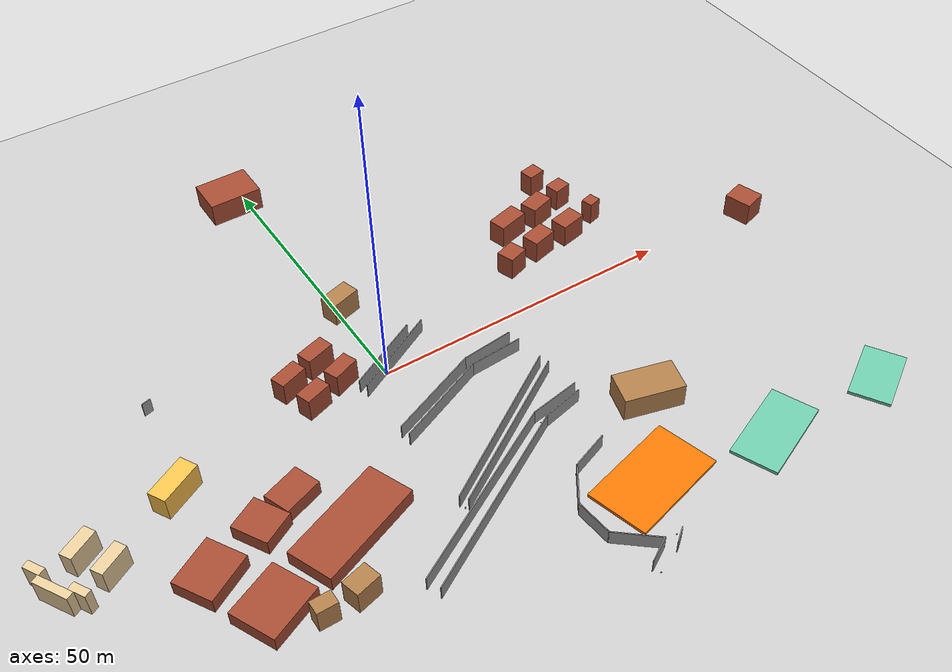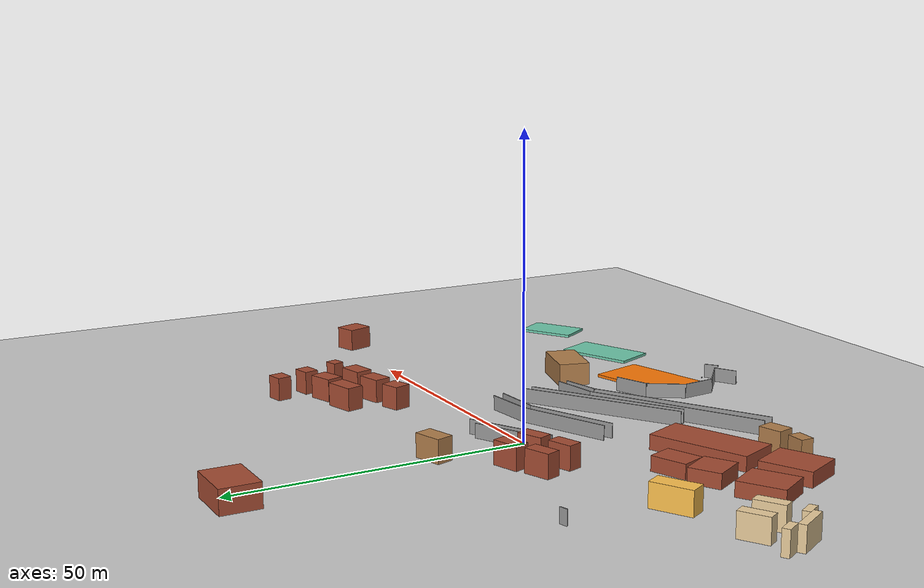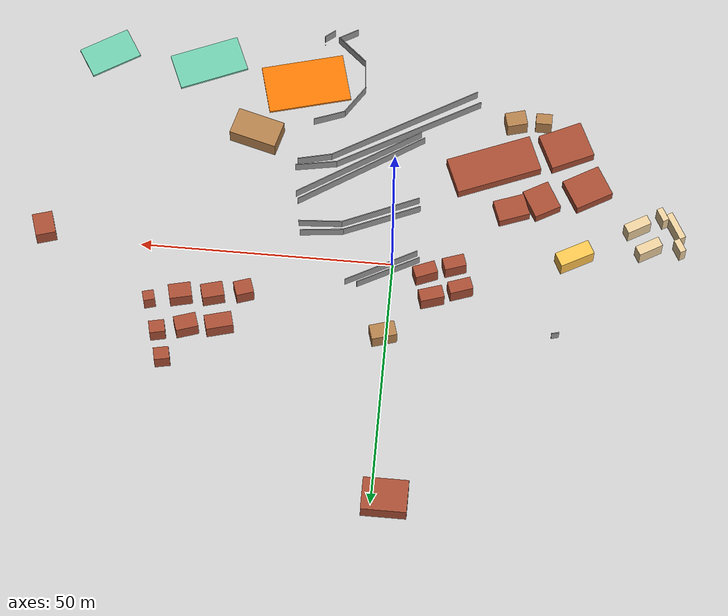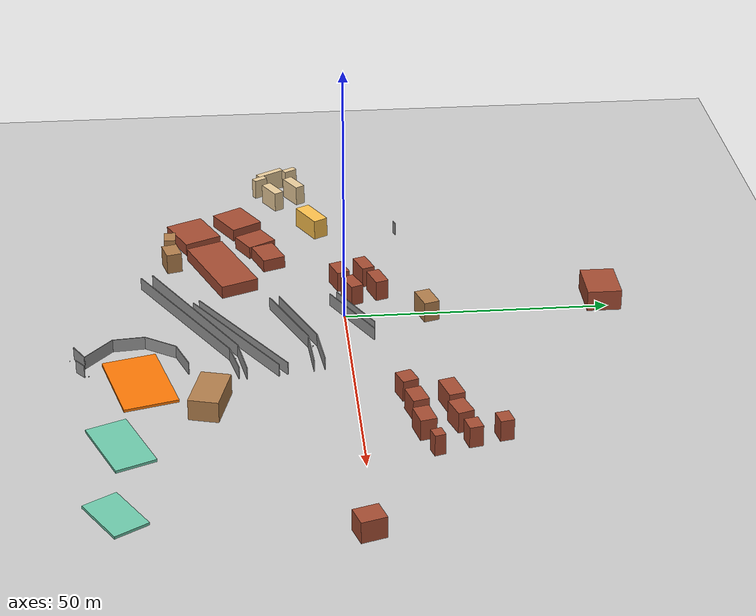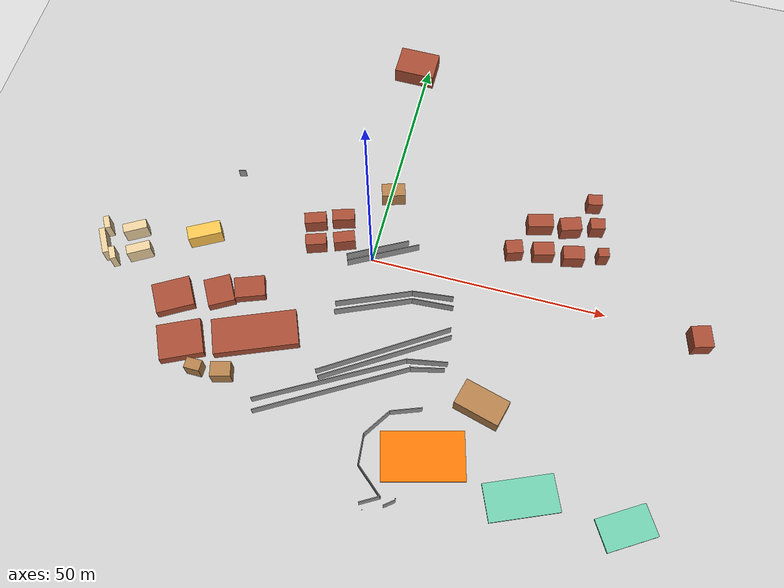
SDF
<sdf version="1.7">
 <world name="default">
  <model name="ground_plane">
   <static>1</static>
   <link name="link">
    <collision name="collision">
     <geometry><plane><normal>0 0 1</normal><size>100 100</size></plane></geometry>
     <surface><friction><ode><mu>100</mu><mu2>50</mu2></ode></friction></surface>
    </collision>
    <visual name="visual">
     <cast_shadows>0</cast_shadows>
     <geometry><plane><normal>0 0 1</normal><size>100 100</size></plane></geometry>
     <material>
      <script><uri>file://media/materials/scripts/gazebo.material</uri><name>Gazebo/Grey</name></script>
     </material>
    </visual>
   </link>
  </model>
  <model name="final_max_v1">
   <pose>-2.5231 0.6891 0 0 -0 0</pose>
   <link name="Wall_453">
    <collision name="Wall_453_Collision">
     <geometry><box><size>13.3527 0.15 2.5</size></box></geometry>
     <pose>0 0 1.25 0 -0 0</pose>
    </collision>
    <visual name="Wall_453_Visual">
     <pose>0 0 1.25 0 -0 0</pose>
     <geometry><box><size>13.3527 0.15 2.5</size></box></geometry>
     <material>
      <script><uri>file://media/materials/scripts/gazebo.material</uri><name>Gazebo/Grey</name></script>
      <ambient>1 1 1 1</ambient>
     </material>
     <meta><layer>0</layer></meta>
    </visual>
    <pose>3.23877 1.36715 0 0 -0 0.485432</pose>
   </link>
   <link name="Wall_498">
    <collision name="Wall_498_Collision">
     <geometry><box><size>28.1608 0.15 2.5</size></box></geometry>
     <pose>0 0 1.25 0 -0 0</pose>
    </collision>
    <visual name="Wall_498_Visual">
     <pose>0 0 1.25 0 -0 0</pose>
     <geometry><box><size>28.1608 0.15 2.5</size></box></geometry>
     <material>
      <script><uri>file://media/materials/scripts/gazebo.material</uri><name>Gazebo/Grey</name></script>
      <ambient>1 1 1 1</ambient>
     </material>
     <meta><layer>0</layer></meta>
    </visual>
    <pose>11.0228 -21.4678 0 0 -0 0.566245</pose>
   </link>
   <link name="Wall_503">
    <collision name="Wall_503_Collision">
     <geometry><box><size>31.8278 0.15 2.5</size></box></geometry>
     <pose>0 0 1.25 0 -0 0</pose>
    </collision>
    <visual name="Wall_503_Visual">
     <pose>0 0 1.25 0 -0 0</pose>
     <geometry><box><size>31.8278 0.15 2.5</size></box></geometry>
     <material>
      <script><uri>file://media/materials/scripts/gazebo.material</uri><name>Gazebo/Grey</name></script>
      <ambient>1 1 1 1</ambient>
     </material>
     <meta><layer>0</layer></meta>
    </visual>
    <pose>1.59172 -28.9196 0 0 -0 0.51392</pose>
   </link>
   <link name="Wall_505">
    <collision name="Wall_505_Collision">
     <geometry><box><size>8.37199 0.15 2.5</size></box></geometry>
     <pose>0 0 1.25 0 -0 0</pose>
    </collision>
    <visual name="Wall_505_Visual">
     <pose>0 0 1.25 0 -0 0</pose>
     <geometry><box><size>8.37199 0.15 2.5</size></box></geometry>
     <material>
      <script><uri>file://media/materials/scripts/gazebo.material</uri><name>Gazebo/Grey</name></script>
      <ambient>1 1 1 1</ambient>
     </material>
     <meta><layer>0</layer></meta>
    </visual>
    <pose>19.4335 -20.4214 0 0 -0 0.174045</pose>
   </link>
   <link name="Wall_534">
    <collision name="Wall_534_Collision">
     <geometry><box><size>28.6684 0.15 2.5</size></box></geometry>
     <pose>0 0 1.25 0 -0 0</pose>
    </collision>
    <visual name="Wall_534_Visual">
     <pose>0 0 1.25 0 -0 0</pose>
     <geometry><box><size>28.6684 0.15 2.5</size></box></geometry>
     <material>
      <script><uri>file://media/materials/scripts/gazebo.material</uri><name>Gazebo/Grey</name></script>
      <ambient>1 1 1 1</ambient>
     </material>
     <meta><layer>0</layer></meta>
    </visual>
    <pose>10.3666 -20.1085 0 0 -0 0.573606</pose>
   </link>
   <link name="Wall_541">
    <collision name="Wall_541_Collision">
     <geometry><box><size>16.2514 0.15 2.5</size></box></geometry>
     <pose>0 0 1.25 0 -0 0</pose>
    </collision>
    <visual name="Wall_541_Visual">
     <pose>0 0 1.25 0 -0 0</pose>
     <geometry><box><size>16.2514 0.15 2.5</size></box></geometry>
     <material>
      <script><uri>file://media/materials/scripts/gazebo.material</uri><name>Gazebo/Grey</name></script>
      <ambient>1 1 1 1</ambient>
     </material>
     <meta><layer>0</layer></meta>
    </visual>
    <pose>5.77658 -11.3512 0 0 -0 0.409246</pose>
   </link>
   <link name="Wall_542">
    <collision name="Wall_542_Collision">
     <geometry><box><size>8.70937 0.15 2.5</size></box></geometry>
     <pose>0 0 1.25 0 -0 0</pose>
    </collision>
    <visual name="Wall_542_Visual">
     <pose>0 0 1.25 0 -0 0</pose>
     <geometry><box><size>8.70937 0.15 2.5</size></box></geometry>
     <material>
      <script><uri>file://media/materials/scripts/gazebo.material</uri><name>Gazebo/Grey</name></script>
      <ambient>1 1 1 1</ambient>
     </material>
     <meta><layer>0</layer></meta>
    </visual>
    <pose>17.4338 -7.88069 0 0 -0 0.062419</pose>
   </link>
   <link name="Wall_548">
    <collision name="Wall_548_Collision">
     <geometry><box><size>16.1594 0.15 2.5</size></box></geometry>
     <pose>0 0 1.25 0 -0 0</pose>
    </collision>
    <visual name="Wall_548_Visual">
     <pose>0 0 1.25 0 -0 0</pose>
     <geometry><box><size>16.1594 0.15 2.5</size></box></geometry>
     <material>
      <script><uri>file://media/materials/scripts/gazebo.material</uri><name>Gazebo/Grey</name></script>
      <ambient>1 1 1 1</ambient>
     </material>
     <meta><layer>0</layer></meta>
    </visual>
    <pose>5.46057 -9.63071 0 0 -0 0.401581</pose>
   </link>
   <link name="Wall_549">
    <collision name="Wall_549_Collision">
     <geometry><box><size>8.61735 0.15 2.5</size></box></geometry>
     <pose>0 0 1.25 0 -0 0</pose>
    </collision>
    <visual name="Wall_549_Visual">
     <pose>0 0 1.25 0 -0 0</pose>
     <geometry><box><size>8.61735 0.15 2.5</size></box></geometry>
     <material>
      <script><uri>file://media/materials/scripts/gazebo.material</uri><name>Gazebo/Grey</name></script>
      <ambient>1 1 1 1</ambient>
     </material>
     <meta><layer>0</layer></meta>
    </visual>
    <pose>17.0384 -6.05442 0 0 -0 0.105888</pose>
   </link>
   <link name="Wall_56">
    <collision name="Wall_56_Collision">
     <geometry><box><size>2.49338 0.15 2.5</size></box></geometry>
     <pose>0 0 1.25 0 -0 0</pose>
    </collision>
    <visual name="Wall_56_Visual">
     <pose>0 0 1.25 0 -0 0</pose>
     <geometry><box><size>2.49338 0.15 2.5</size></box></geometry>
     <material>
      <script><uri>file://media/materials/scripts/gazebo.material</uri><name>Gazebo/Grey</name></script>
      <ambient>1 1 1 1</ambient>
     </material>
     <meta><layer>0</layer></meta>
    </visual>
    <pose>19.35 -49.4619 0 0 -0 0.668129</pose>
   </link>
   <link name="Wall_607">
    <collision name="Wall_607_Collision">
     <geometry><box><size>15.5213 0.15 2.5</size></box></geometry>
     <pose>0 0 1.25 0 -0 0</pose>
    </collision>
    <visual name="Wall_607_Visual">
     <pose>0 0 1.25 0 -0 0</pose>
     <geometry><box><size>15.5213 0.15 2.5</size></box></geometry>
     <material>
      <script><uri>file://media/materials/scripts/gazebo.material</uri><name>Gazebo/Grey</name></script>
      <ambient>1 1 1 1</ambient>
     </material>
     <meta><layer>0</layer></meta>
    </visual>
    <pose>4.70413 0.540875 0 0 -0 0.492919</pose>
   </link>
   <link name="Wall_76">
    <collision name="Wall_76_Collision">
     <geometry><box><size>4.25 0.15 2.5</size></box></geometry>
     <pose>0 0 1.25 0 -0 0</pose>
    </collision>
    <visual name="Wall_76_Visual">
     <pose>0 0 1.25 0 -0 0</pose>
     <geometry><box><size>4.25 0.15 2.5</size></box></geometry>
     <material>
      <script><uri>file://media/materials/scripts/gazebo.material</uri><name>Gazebo/Grey</name></script>
      <ambient>1 1 1 1</ambient>
     </material>
     <meta><layer>0</layer></meta>
    </visual>
    <pose>15.5961 -49.7666 0 0 -0 0.523599</pose>
   </link>
   <link name="Wall_77">
    <collision name="Wall_77_Collision">
     <geometry><box><size>7.6073 0.15 2.5</size></box></geometry>
     <pose>0 0 1.25 0 -0 0</pose>
    </collision>
    <visual name="Wall_77_Visual">
     <pose>0 0 1.25 0 -0 0</pose>
     <geometry><box><size>7.6073 0.15 2.5</size></box></geometry>
     <material>
      <script><uri>file://media/materials/scripts/gazebo.material</uri><name>Gazebo/Grey</name></script>
      <ambient>1 1 1 1</ambient>
     </material>
     <meta><layer>0</layer></meta>
    </visual>
    <pose>14.5391 -46.3166 0 0 -0 2.43352</pose>
   </link>
   <link name="Wall_78">
    <collision name="Wall_78_Collision">
     <geometry><box><size>6.10962 0.15 2.5</size></box></geometry>
     <pose>0 0 1.25 0 -0 0</pose>
    </collision>
    <visual name="Wall_78_Visual">
     <pose>0 0 1.25 0 -0 0</pose>
     <geometry><box><size>6.10962 0.15 2.5</size></box></geometry>
     <material>
      <script><uri>file://media/materials/scripts/gazebo.material</uri><name>Gazebo/Grey</name></script>
      <ambient>1 1 1 1</ambient>
     </material>
     <meta><layer>0</layer></meta>
    </visual>
    <pose>11.4307 -40.9246 0 0 -0 1.66355</pose>
   </link>
   <link name="Wall_79">
    <collision name="Wall_79_Collision">
     <geometry><box><size>6.92466 0.15 2.5</size></box></geometry>
     <pose>0 0 1.25 0 -0 0</pose>
    </collision>
    <visual name="Wall_79_Visual">
     <pose>0 0 1.25 0 -0 0</pose>
     <geometry><box><size>6.92466 0.15 2.5</size></box></geometry>
     <material>
      <script><uri>file://media/materials/scripts/gazebo.material</uri><name>Gazebo/Grey</name></script>
      <ambient>1 1 1 1</ambient>
     </material>
     <meta><layer>0</layer></meta>
    </visual>
    <pose>13.0177 -35.1286 0 0 -0 0.988443</pose>
   </link>
   <link name="Wall_80">
    <collision name="Wall_80_Collision">
     <geometry><box><size>6.48148 0.15 2.5</size></box></geometry>
     <pose>0 0 1.25 0 -0 0</pose>
    </collision>
    <visual name="Wall_80_Visual">
     <pose>0 0 1.25 0 -0 0</pose>
     <geometry><box><size>6.48148 0.15 2.5</size></box></geometry>
     <material>
      <script><uri>file://media/materials/scripts/gazebo.material</uri><name>Gazebo/Grey</name></script>
      <ambient>1 1 1 1</ambient>
     </material>
     <meta><layer>0</layer></meta>
    </visual>
    <pose>17.8477 -31.1956 0 0 -0 0.35622</pose>
   </link>
   <link name="Wall_83">
    <collision name="Wall_83_Collision">
     <geometry><box><size>6.94571 0.15 2.5</size></box></geometry>
     <pose>0 0 1.25 0 -0 0</pose>
    </collision>
    <visual name="Wall_83_Visual">
     <pose>0 0 1.25 0 -0 0</pose>
     <geometry><box><size>6.94571 0.15 2.5</size></box></geometry>
     <material>
      <script><uri>file://media/materials/scripts/gazebo.material</uri><name>Gazebo/Grey</name></script>
      <ambient>1 1 1 1</ambient>
     </material>
     <meta><layer>0</layer></meta>
    </visual>
    <pose>19.8487 -21.8806 0 0 -0 -2.91632</pose>
   </link>
   <link name="Wall_84">
    <collision name="Wall_84_Collision">
     <geometry><box><size>32.4337 0.15 2.5</size></box></geometry>
     <pose>0 0 1.25 0 -0 0</pose>
    </collision>
    <visual name="Wall_84_Visual">
     <pose>0 0 1.25 0 -0 0</pose>
     <geometry><box><size>32.4337 0.15 2.5</size></box></geometry>
     <material>
      <script><uri>file://media/materials/scripts/gazebo.material</uri><name>Gazebo/Grey</name></script>
      <ambient>1 1 1 1</ambient>
     </material>
     <meta><layer>0</layer></meta>
    </visual>
    <pose>2.59875 -30.7816 0 0 -0 -2.6129</pose>
   </link>
   <static>1</static>
  </model>
  <model name="v2">
   <pose>7.184 2.6114 0 0 -0 0</pose>
   <link name="Wall_16">
    <collision name="Wall_16_Collision">
     <geometry><box><size>2.80067 1.25 4</size></box></geometry>
     <pose>0 0 2 0 -0 0</pose>
    </collision>
    <visual name="Wall_16_Visual">
     <pose>0 0 2 0 -0 0</pose>
     <geometry><box><size>2.80067 1.25 4</size></box></geometry>
     <material>
      <script><uri>file://media/materials/scripts/gazebo.material</uri><name>Gazebo/Grey</name></script>
      <ambient>0.921569 0.807843 0.615686 1</ambient>
     </material>
     <meta><layer>0</layer></meta>
    </visual>
    <pose>-59.5805 -16.5579 0 0 -0 2.09418</pose>
   </link>
   <link name="Wall_18">
    <collision name="Wall_18_Collision">
     <geometry><box><size>2.80018 1.25 4</size></box></geometry>
     <pose>0 0 2 0 -0 0</pose>
    </collision>
    <visual name="Wall_18_Visual">
     <pose>0 0 2 0 -0 0</pose>
     <geometry><box><size>2.80018 1.25 4</size></box></geometry>
     <material>
      <script><uri>file://media/materials/scripts/gazebo.material</uri><name>Gazebo/Grey</name></script>
      <ambient>0.921569 0.807843 0.615686 1</ambient>
     </material>
     <meta><layer>0</layer></meta>
    </visual>
    <pose>-63.2985 -10.1519 0 0 -0 2.09418</pose>
   </link>
   <link name="Wall_20">
    <collision name="Wall_20_Collision">
     <geometry><box><size>5.80026 1.25 4</size></box></geometry>
     <pose>0 0 2 0 -0 0</pose>
    </collision>
    <visual name="Wall_20_Visual">
     <pose>0 0 2 0 -0 0</pose>
     <geometry><box><size>5.80026 1.25 4</size></box></geometry>
     <material>
      <script><uri>file://media/materials/scripts/gazebo.material</uri><name>Gazebo/Grey</name></script>
      <ambient>0.921569 0.807843 0.615686 1</ambient>
     </material>
     <meta><layer>0</layer></meta>
    </visual>
    <pose>-62.3175 -14.3269 0 0 -0 -1.04726</pose>
   </link>
   <link name="Wall_23">
    <collision name="Wall_23_Collision">
     <geometry><box><size>5 2 4</size></box></geometry>
     <pose>0 0 2 0 -0 0</pose>
    </collision>
    <visual name="Wall_23_Visual">
     <pose>0 0 2 0 -0 0</pose>
     <geometry><box><size>5 2 4</size></box></geometry>
     <material>
      <script><uri>file://media/materials/scripts/gazebo.material</uri><name>Gazebo/Grey</name></script>
      <ambient>0.921569 0.807843 0.615686 1</ambient>
     </material>
     <meta><layer>0</layer></meta>
    </visual>
    <pose>-57.232 -9.51344 0 0 -0 0.523611</pose>
   </link>
   <link name="Wall_29">
    <collision name="Wall_29_Collision">
     <geometry><box><size>5 2 4</size></box></geometry>
     <pose>0 0 2 0 -0 0</pose>
    </collision>
    <visual name="Wall_29_Visual">
     <pose>0 0 2 0 -0 0</pose>
     <geometry><box><size>5 2 4</size></box></geometry>
     <material>
      <script><uri>file://media/materials/scripts/gazebo.material</uri><name>Gazebo/Grey</name></script>
      <ambient>0.921569 0.807843 0.615686 1</ambient>
     </material>
     <meta><layer>0</layer></meta>
    </visual>
    <pose>-54.732 -14.0254 0 0 -0 0.523611</pose>
   </link>
   <link name="Wall_31">
    <collision name="Wall_31_Collision">
     <geometry><box><size>7.07571 3 4</size></box></geometry>
     <pose>0 0 2 0 -0 0</pose>
    </collision>
    <visual name="Wall_31_Visual">
     <pose>0 0 2 0 -0 0</pose>
     <geometry><box><size>7.07571 3 4</size></box></geometry>
     <material>
      <script><uri>file://media/materials/scripts/gazebo.material</uri><name>Gazebo/Grey</name></script>
      <ambient>1 0.764706 0.305882 1</ambient>
     </material>
     <meta><layer>0</layer></meta>
    </visual>
    <pose>-42.7581 -6.66576 0 0 -0 0.498005</pose>
   </link>
   <link name="Wall_34">
    <collision name="Wall_34_Collision">
     <geometry><box><size>4.34585 2.5 4</size></box></geometry>
     <pose>0 0 2 0 -0 0</pose>
    </collision>
    <visual name="Wall_34_Visual">
     <pose>0 0 2 0 -0 0</pose>
     <geometry><box><size>4.34585 2.5 4</size></box></geometry>
     <material>
      <script><uri>file://media/materials/scripts/gazebo.material</uri><name>Gazebo/Bricks</name></script>
      <ambient>0.435294 0.796078 0.67451 1</ambient>
     </material>
     <meta><layer>0</layer></meta>
    </visual>
    <pose>-19.3355 -2.70814 0 0 -0 0.327061</pose>
   </link>
   <link name="Wall_36">
    <collision name="Wall_36_Collision">
     <geometry><box><size>4.60603 2.5 4</size></box></geometry>
     <pose>0 0 2 0 -0 0</pose>
    </collision>
    <visual name="Wall_36_Visual">
     <pose>0 0 2 0 -0 0</pose>
     <geometry><box><size>4.60603 2.5 4</size></box></geometry>
     <material>
      <script><uri>file://media/materials/scripts/gazebo.material</uri><name>Gazebo/Bricks</name></script>
      <ambient>0.435294 0.796078 0.67451 1</ambient>
     </material>
     <meta><layer>0</layer></meta>
    </visual>
    <pose>-20.8855 2.15596 0 0 -0 0.337818</pose>
   </link>
   <link name="Wall_38">
    <collision name="Wall_38_Collision">
     <geometry><box><size>4.72487 2.54 4</size></box></geometry>
     <pose>0 0 2 0 -0 0</pose>
    </collision>
    <visual name="Wall_38_Visual">
     <pose>0 0 2 0 -0 0</pose>
     <geometry><box><size>4.72487 2.54 4</size></box></geometry>
     <material>
      <script><uri>file://media/materials/scripts/gazebo.material</uri><name>Gazebo/Bricks</name></script>
      <ambient>0.435294 0.796078 0.67451 1</ambient>
     </material>
     <meta><layer>0</layer></meta>
    </visual>
    <pose>-15.3648 4.35634 0 0 -0 0.303513</pose>
   </link>
   <link name="Wall_40">
    <collision name="Wall_40_Collision">
     <geometry><box><size>4.51058 2.5 4</size></box></geometry>
     <pose>0 0 2 0 -0 0</pose>
    </collision>
    <visual name="Wall_40_Visual">
     <pose>0 0 2 0 -0 0</pose>
     <geometry><box><size>4.51058 2.5 4</size></box></geometry>
     <material>
      <script><uri>file://media/materials/scripts/gazebo.material</uri><name>Gazebo/Bricks</name></script>
      <ambient>0.435294 0.796078 0.67451 1</ambient>
     </material>
     <meta><layer>0</layer></meta>
    </visual>
    <pose>-13.7627 -0.637549 0 0 -0 -2.76115</pose>
   </link>
   <link name="Wall_44">
    <collision name="Wall_44_Collision">
     <geometry><box><size>4.99946 3 4</size></box></geometry>
     <pose>0 0 2 0 -0 0</pose>
    </collision>
    <visual name="Wall_44_Visual">
     <pose>0 0 2 0 -0 0</pose>
     <geometry><box><size>4.99946 3 4</size></box></geometry>
     <material>
      <script><uri>file://media/materials/scripts/gazebo.material</uri><name>Gazebo/Wood</name></script>
      <ambient>0.996078 0.47451 0.0196078 1</ambient>
     </material>
     <meta><layer>0</layer></meta>
    </visual>
    <pose>-6.61215 12.9117 0 0 -0 0.291696</pose>
   </link>
   <link name="Wall_46">
    <collision name="Wall_46_Collision">
     <geometry><box><size>1.5 0.15 2.5</size></box></geometry>
     <pose>0 0 1.25 0 -0 0</pose>
    </collision>
    <visual name="Wall_46_Visual">
     <pose>0 0 1.25 0 -0 0</pose>
     <geometry><box><size>1.5 0.15 2.5</size></box></geometry>
     <material>
      <script><uri>file://media/materials/scripts/gazebo.material</uri><name>Gazebo/Grey</name></script>
      <ambient>1 1 1 1</ambient>
     </material>
     <meta><layer>0</layer></meta>
    </visual>
    <pose>-40.1047 9.97183 0 0 -0 -2.87979</pose>
   </link>
   <link name="Wall_50">
    <collision name="Wall_50_Collision">
     <geometry><box><size>3.5 3 4</size></box></geometry>
     <pose>0 0 2 0 -0 0</pose>
    </collision>
    <visual name="Wall_50_Visual">
     <pose>0 0 2 0 -0 0</pose>
     <geometry><box><size>3.5 3 4</size></box></geometry>
     <material>
      <script><uri>file://media/materials/scripts/gazebo.material</uri><name>Gazebo/Bricks</name></script>
      <ambient>0.435294 0.796078 0.67451 1</ambient>
     </material>
     <meta><layer>0</layer></meta>
    </visual>
    <pose>21.342 6.28056 0 0 -0 0.321751</pose>
   </link>
   <link name="Wall_52">
    <collision name="Wall_52_Collision">
     <geometry><box><size>4.3499 3 4</size></box></geometry>
     <pose>0 0 2 0 -0 0</pose>
    </collision>
    <visual name="Wall_52_Visual">
     <pose>0 0 2 0 -0 0</pose>
     <geometry><box><size>4.3499 3 4</size></box></geometry>
     <material>
      <script><uri>file://media/materials/scripts/gazebo.material</uri><name>Gazebo/Bricks</name></script>
      <ambient>0.435294 0.796078 0.67451 1</ambient>
     </material>
     <meta><layer>0</layer></meta>
    </visual>
    <pose>27.3657 7.42135 0 0 -0 0.261509</pose>
   </link>
   <link name="Wall_54">
    <collision name="Wall_54_Collision">
     <geometry><box><size>4.42155 3 4</size></box></geometry>
     <pose>0 0 2 0 -0 0</pose>
    </collision>
    <visual name="Wall_54_Visual">
     <pose>0 0 2 0 -0 0</pose>
     <geometry><box><size>4.42155 3 4</size></box></geometry>
     <material>
      <script><uri>file://media/materials/scripts/gazebo.material</uri><name>Gazebo/Bricks</name></script>
      <ambient>0.435294 0.796078 0.67451 1</ambient>
     </material>
     <meta><layer>0</layer></meta>
    </visual>
    <pose>33.6579 8.08386 0 0 -0 0.223626</pose>
   </link>
   <link name="Wall_56">
    <collision name="Wall_56_Collision">
     <geometry><box><size>5.35027 3 4</size></box></geometry>
     <pose>0 0 2 0 -0 0</pose>
    </collision>
    <visual name="Wall_56_Visual">
     <pose>0 0 2 0 -0 0</pose>
     <geometry><box><size>5.35027 3 4</size></box></geometry>
     <material>
      <script><uri>file://media/materials/scripts/gazebo.material</uri><name>Gazebo/Bricks</name></script>
      <ambient>0.435294 0.796078 0.67451 1</ambient>
     </material>
     <meta><layer>0</layer></meta>
    </visual>
    <pose>25.4744 13.7439 0 0 -0 0.26211</pose>
   </link>
   <link name="Wall_58">
    <collision name="Wall_58_Collision">
     <geometry><box><size>4.41995 3 4</size></box></geometry>
     <pose>0 0 2 0 -0 0</pose>
    </collision>
    <visual name="Wall_58_Visual">
     <pose>0 0 2 0 -0 0</pose>
     <geometry><box><size>4.41995 3 4</size></box></geometry>
     <material>
      <script><uri>file://media/materials/scripts/gazebo.material</uri><name>Gazebo/Bricks</name></script>
      <ambient>0.435294 0.796078 0.67451 1</ambient>
     </material>
     <meta><layer>0</layer></meta>
    </visual>
    <pose>31.829 14.5579 0 0 -0 0.313698</pose>
   </link>
   <link name="Wall_60">
    <collision name="Wall_60_Collision">
     <geometry><box><size>3.06617 2.5 4</size></box></geometry>
     <pose>0 0 2 0 -0 0</pose>
    </collision>
    <visual name="Wall_60_Visual">
     <pose>0 0 2 0 -0 0</pose>
     <geometry><box><size>3.06617 2.5 4</size></box></geometry>
     <material>
      <script><uri>file://media/materials/scripts/gazebo.material</uri><name>Gazebo/Bricks</name></script>
      <ambient>0.435294 0.796078 0.67451 1</ambient>
     </material>
     <meta><layer>0</layer></meta>
    </visual>
    <pose>37.322 16.0563 0 0 -0 0.209078</pose>
   </link>
   <link name="Wall_63">
    <collision name="Wall_63_Collision">
     <geometry><box><size>3.012 2.5 4</size></box></geometry>
     <pose>0 0 2 0 -0 0</pose>
    </collision>
    <visual name="Wall_63_Visual">
     <pose>0 0 2 0 -0 0</pose>
     <geometry><box><size>3.012 2.5 4</size></box></geometry>
     <material>
      <script><uri>file://media/materials/scripts/gazebo.material</uri><name>Gazebo/Bricks</name></script>
      <ambient>0.435294 0.796078 0.67451 1</ambient>
     </material>
     <meta><layer>0</layer></meta>
    </visual>
    <pose>35.818 21.5803 0 0 -0 0.195981</pose>
   </link>
   <link name="Wall_65">
    <collision name="Wall_65_Collision">
     <geometry><box><size>2.25 2 4</size></box></geometry>
     <pose>0 0 2 0 -0 0</pose>
    </collision>
    <visual name="Wall_65_Visual">
     <pose>0 0 2 0 -0 0</pose>
     <geometry><box><size>2.25 2 4</size></box></geometry>
     <material>
      <script><uri>file://media/materials/scripts/gazebo.material</uri><name>Gazebo/Bricks</name></script>
      <ambient>0.435294 0.796078 0.67451 1</ambient>
     </material>
     <meta><layer>0</layer></meta>
    </visual>
    <pose>39.6724 9.69292 0 0 -0 0.261799</pose>
   </link>
   <link name="Wall_67">
    <collision name="Wall_67_Collision">
     <geometry><box><size>4.58274 4 4</size></box></geometry>
     <pose>0 0 2 0 -0 0</pose>
    </collision>
    <visual name="Wall_67_Visual">
     <pose>0 0 2 0 -0 0</pose>
     <geometry><box><size>4.58274 4 4</size></box></geometry>
     <material>
      <script><uri>file://media/materials/scripts/gazebo.material</uri><name>Gazebo/Bricks</name></script>
      <ambient>0.760784 0.662745 0.627451 1</ambient>
     </material>
     <meta><layer>0</layer></meta>
    </visual>
    <pose>61.964 -3.76044 0 0 -0 1.86324</pose>
   </link>
   <link name="Wall_69">
    <collision name="Wall_69_Collision">
     <geometry><box><size>8.85 6.5 4</size></box></geometry>
     <pose>0 0 2 0 -0 0</pose>
    </collision>
    <visual name="Wall_69_Visual">
     <pose>0 0 2 0 -0 0</pose>
     <geometry><box><size>8.85 6.5 4</size></box></geometry>
     <material>
      <script><uri>file://media/materials/scripts/gazebo.material</uri><name>Gazebo/Bricks</name></script>
      <ambient>0.760784 0.662745 0.627451 1</ambient>
     </material>
     <meta><layer>0</layer></meta>
    </visual>
    <pose>-9.88503 46.6496 0 0 -0 0</pose>
   </link>
   <link name="Wall_74">
    <collision name="Wall_74_Collision">
     <geometry><box><size>4.10054 3 4</size></box></geometry>
     <pose>0 0 2 0 -0 0</pose>
    </collision>
    <visual name="Wall_74_Visual">
     <pose>0 0 2 0 -0 0</pose>
     <geometry><box><size>4.10054 3 4</size></box></geometry>
     <material>
      <script><uri>file://media/materials/scripts/gazebo.material</uri><name>Gazebo/Wood</name></script>
      <ambient>0.760784 0.662745 0.627451 1</ambient>
     </material>
     <meta><layer>0</layer></meta>
    </visual>
    <pose>-29.2687 -34.9525 0 0 -0 0.261949</pose>
   </link>
   <link name="Wall_76">
    <collision name="Wall_76_Collision">
     <geometry><box><size>3.2 2.25 4</size></box></geometry>
     <pose>0 0 2 0 -0 0</pose>
    </collision>
    <visual name="Wall_76_Visual">
     <pose>0 0 2 0 -0 0</pose>
     <geometry><box><size>3.2 2.25 4</size></box></geometry>
     <material>
      <script><uri>file://media/materials/scripts/gazebo.material</uri><name>Gazebo/Wood</name></script>
      <ambient>0.760784 0.662745 0.627451 1</ambient>
     </material>
     <meta><layer>0</layer></meta>
    </visual>
    <pose>-34.8435 -35.3558 0 0 -0 0</pose>
   </link>
   <link name="Wall_78">
    <collision name="Wall_78_Collision">
     <geometry><box><size>16.6002 10 0.5</size></box></geometry>
     <pose>0 0 0.25 0 -0 0</pose>
    </collision>
    <visual name="Wall_78_Visual">
     <pose>0 0 0.25 0 -0 0</pose>
     <geometry><box><size>16.6002 10 0.5</size></box></geometry>
     <material>
      <script><uri>file://media/materials/scripts/gazebo.material</uri><name>Gazebo/Grey</name></script>
      <ambient>0.996078 0.47451 0.0196078 1</ambient>
     </material>
     <meta><layer>0</layer></meta>
    </visual>
    <pose>13.5385 -40.7364 0 0 -0 0.261774</pose>
   </link>
   <link name="Wall_80">
    <collision name="Wall_80_Collision">
     <geometry><box><size>14.058 7.5 0.5</size></box></geometry>
     <pose>0 0 0.25 0 -0 0</pose>
    </collision>
    <visual name="Wall_80_Visual">
     <pose>0 0 0.25 0 -0 0</pose>
     <geometry><box><size>14.058 7.5 0.5</size></box></geometry>
     <material>
      <script><uri>file://media/materials/scripts/gazebo.material</uri><name>Gazebo/Grey</name></script>
      <ambient>0.435294 0.796078 0.67451 1</ambient>
     </material>
     <meta><layer>0</layer></meta>
    </visual>
    <pose>33.5944 -43.7091 0 0 -0 0.399844</pose>
   </link>
   <link name="Wall_82">
    <collision name="Wall_82_Collision">
     <geometry><box><size>10.486 6.5 0.5</size></box></geometry>
     <pose>0 0 0.25 0 -0 0</pose>
    </collision>
    <visual name="Wall_82_Visual">
     <pose>0 0 0.25 0 -0 0</pose>
     <geometry><box><size>10.486 6.5 0.5</size></box></geometry>
     <material>
      <script><uri>file://media/materials/scripts/gazebo.material</uri><name>Gazebo/Grey</name></script>
      <ambient>0.435294 0.796078 0.67451 1</ambient>
     </material>
     <meta><layer>0</layer></meta>
    </visual>
    <pose>53.8205 -44.1329 0 0 -0 0.549798</pose>
   </link>
   <link name="Wall_84">
    <collision name="Wall_84_Collision">
     <geometry><box><size>9.59967 5.5 4</size></box></geometry>
     <pose>0 0 2 0 -0 0</pose>
    </collision>
    <visual name="Wall_84_Visual">
     <pose>0 0 2 0 -0 0</pose>
     <geometry><box><size>9.59967 5.5 4</size></box></geometry>
     <material>
      <script><uri>file://media/materials/scripts/gazebo.material</uri><name>Gazebo/Wood</name></script>
      <ambient>1 1 1 1</ambient>
     </material>
     <meta><layer>0</layer></meta>
    </visual>
    <pose>22.208 -28.3729 0 0 -0 -0.261781</pose>
   </link>
   <link name="Wall_86">
    <collision name="Wall_86_Collision">
     <geometry><box><size>7.84988 6.5 2.5</size></box></geometry>
     <pose>0 0 1.25 0 -0 0</pose>
    </collision>
    <visual name="Wall_86_Visual">
     <pose>0 0 1.25 0 -0 0</pose>
     <geometry><box><size>7.84988 6.5 2.5</size></box></geometry>
     <material>
      <script><uri>file://media/materials/scripts/gazebo.material</uri><name>Gazebo/Bricks</name></script>
      <ambient>1 1 1 1</ambient>
     </material>
     <meta><layer>0</layer></meta>
    </visual>
    <pose>-44.4611 -21.7591 0 0 -0 0.523649</pose>
   </link>
   <link name="Wall_88">
    <collision name="Wall_88_Collision">
     <geometry><box><size>5.95284 5.5 2.5</size></box></geometry>
     <pose>0 0 1.25 0 -0 0</pose>
    </collision>
    <visual name="Wall_88_Visual">
     <pose>0 0 1.25 0 -0 0</pose>
     <geometry><box><size>5.95284 5.5 2.5</size></box></geometry>
     <material>
      <script><uri>file://media/materials/scripts/gazebo.material</uri><name>Gazebo/Bricks</name></script>
      <ambient>1 1 1 1</ambient>
     </material>
     <meta><layer>0</layer></meta>
    </visual>
    <pose>-35.5432 -18.3905 0 0 -0 2.08426</pose>
   </link>
   <link name="Wall_90">
    <collision name="Wall_90_Collision">
     <geometry><box><size>6.28786 4.5 2.5</size></box></geometry>
     <pose>0 0 1.25 0 -0 0</pose>
    </collision>
    <visual name="Wall_90_Visual">
     <pose>0 0 1.25 0 -0 0</pose>
     <geometry><box><size>6.28786 4.5 2.5</size></box></geometry>
     <material>
      <script><uri>file://media/materials/scripts/gazebo.material</uri><name>Gazebo/Bricks</name></script>
      <ambient>1 1 1 1</ambient>
     </material>
     <meta><layer>0</layer></meta>
    </visual>
    <pose>-29.7045 -16.0394 0 0 -0 0.353935</pose>
   </link>
   <link name="Wall_92">
    <collision name="Wall_92_Collision">
     <geometry><box><size>8.95145 7.5 2.5</size></box></geometry>
     <pose>0 0 1.25 0 -0 0</pose>
    </collision>
    <visual name="Wall_92_Visual">
     <pose>0 0 1.25 0 -0 0</pose>
     <geometry><box><size>8.95145 7.5 2.5</size></box></geometry>
     <material>
      <script><uri>file://media/materials/scripts/gazebo.material</uri><name>Gazebo/Bricks</name></script>
      <ambient>1 1 1 1</ambient>
     </material>
     <meta><layer>0</layer></meta>
    </visual>
    <pose>-39.6704 -30.618 0 0 -0 0.437232</pose>
   </link>
   <link name="Wall_94">
    <collision name="Wall_94_Collision">
     <geometry><box><size>17.3428 7.5 2.5</size></box></geometry>
     <pose>0 0 1.25 0 -0 0</pose>
    </collision>
    <visual name="Wall_94_Visual">
     <pose>0 0 1.25 0 -0 0</pose>
     <geometry><box><size>17.3428 7.5 2.5</size></box></geometry>
     <material>
      <script><uri>file://media/materials/scripts/gazebo.material</uri><name>Gazebo/Bricks</name></script>
      <ambient>1 1 1 1</ambient>
     </material>
     <meta><layer>0</layer></meta>
    </visual>
    <pose>-25.5396 -25.2081 0 0 -0 0.386992</pose>
   </link>
   <static>1</static>
  </model>
  <model name="id_130">
   <pose>12.0847 -50.9365 0.098466 0 -0 0</pose>
   <link name="link">
    <inertial>
     <mass>1</mass>
     <inertia><ixx>0.1</ixx><ixy>0</ixy><ixz>0</ixz><iyy>0.1</iyy><iyz>0</iyz><izz>0.1</izz></inertia>
    </inertial>
    <collision name="collision"><geometry><sphere><radius>0.0984663</radius></sphere></geometry></collision>
    <visual name="visual">
     <geometry><sphere><radius>0.0984663</radius></sphere></geometry>
     <material>
      <script><name>Gazebo/Grey</name><uri>file://media/materials/scripts/gazebo.material</uri></script>
     </material>
    </visual>
   </link>
  </model>
  <model name="id_131">
   <pose>17.6633 -47.3148 0.098466 0 -0 0</pose>
   <link name="link">
    <inertial>
     <mass>1</mass>
     <inertia><ixx>0.1</ixx><ixy>0</ixy><ixz>0</ixz><iyy>0.1</iyy><iyz>0</iyz><izz>0.1</izz></inertia>
    </inertial>
    <collision name="collision"><geometry><sphere><radius>0.0984663</radius></sphere></geometry></collision>
    <visual name="visual">
     <geometry><sphere><radius>0.0984663</radius></sphere></geometry>
     <material>
      <script><name>Gazebo/Grey</name><uri>file://media/materials/scripts/gazebo.material</uri></script>
     </material>
    </visual>
   </link>
  </model>
  <model name="id_110">
   <pose>13.7017 -20.923 0.098466 0 -0 0</pose>
   <link name="link">
    <inertial>
     <mass>1</mass>
     <inertia><ixx>0.1</ixx><ixy>0</ixy><ixz>0</ixz><iyy>0.1</iyy><iyz>0</iyz><izz>0.1</izz></inertia>
    </inertial>
    <collision name="collision"><geometry><sphere><radius>0.0984663</radius></sphere></geometry></collision>
    <visual name="visual">
     <geometry><sphere><radius>0.0984663</radius></sphere></geometry>
     <material>
      <script><name>Gazebo/Grey</name><uri>file://media/materials/scripts/gazebo.material</uri></script>
     </material>
    </visual>
   </link>
  </model>
  <model name="id_41">
   <pose>10.5594 -6.6257 0.128457 0 -0 0</pose>
   <link name="link">
    <inertial>
     <mass>1</mass>
     <inertia><ixx>0.1</ixx><ixy>0</ixy><ixz>0</ixz><iyy>0.1</iyy><iyz>0</iyz><izz>0.1</izz></inertia>
    </inertial>
    <collision name="collision"><geometry><sphere><radius>0.128457</radius></sphere></geometry></collision>
    <visual name="visual">
     <geometry><sphere><radius>0.128457</radius></sphere></geometry>
     <material>
      <script><name>Gazebo/Grey</name><uri>file://media/materials/scripts/gazebo.material</uri></script>
     </material>
    </visual>
   </link>
  </model>
  <model name="id_80">
   <pose>-3.64429 -27.8172 0.128457 0 -0 0</pose>
   <link name="link">
    <inertial>
     <mass>1</mass>
     <inertia><ixx>0.1</ixx><ixy>0</ixy><ixz>0</ixz><iyy>0.1</iyy><iyz>0</iyz><izz>0.1</izz></inertia>
    </inertial>
    <collision name="collision"><geometry><sphere><radius>0.128457</radius></sphere></geometry></collision>
    <visual name="visual">
     <geometry><sphere><radius>0.128457</radius></sphere></geometry>
     <material>
      <script><name>Gazebo/Grey</name><uri>file://media/materials/scripts/gazebo.material</uri></script>
     </material>
    </visual>
   </link>
  </model>
 </world>
</sdf>
